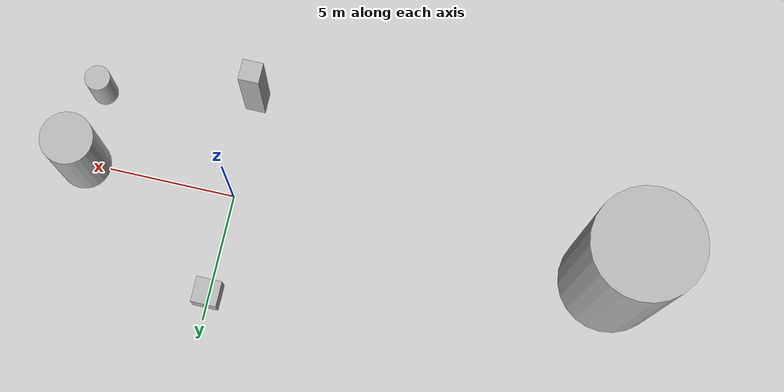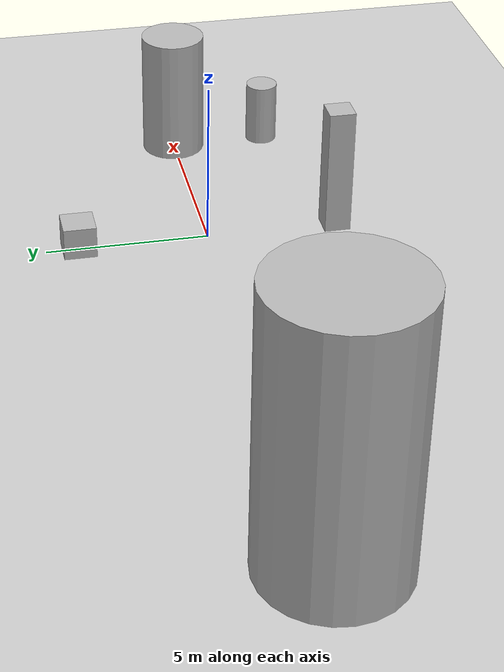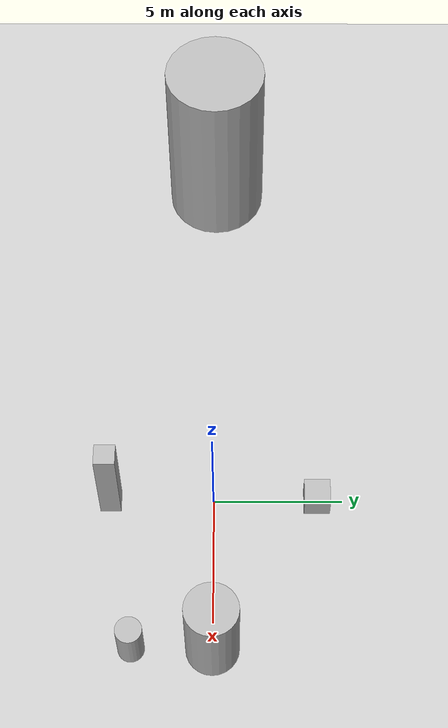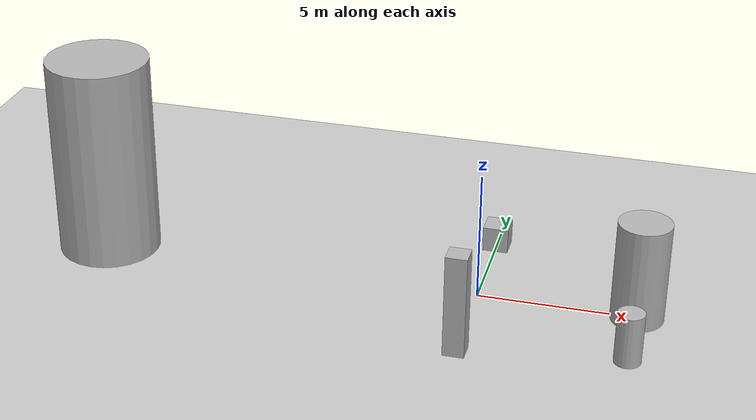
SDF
<?xml version="1.0"?>
<sdf version="1.5">
  <world name="default">
    <!-- A global light source -->
    <include>
      <uri>model://sun</uri>
    </include>
    <!-- A ground plane -->
    <include>
      <uri>model://ground_plane</uri>
    </include>
    <include>
      <uri>model://asphalt_plane</uri>
    </include>

    <!-- Cylinder 1 -->
    <model name="cylinder_1">
      <pose>6 0 2 0 0 0</pose>
      <link name="link">
        <collision name="collision">
          <geometry>
            <cylinder>
              <radius>1.0</radius>
              <length>4.0</length>
            </cylinder>
          </geometry>
        </collision>
        <visual name="visual">
          <geometry>
            <cylinder>
              <radius>1.0</radius>
              <length>4.0</length>
            </cylinder>
          </geometry>
        </visual>
      </link>
    </model>

    <!-- Cylinder 11 -->
    <model name="cylinder_11">
      <pose>6 -3 1 0 0 0</pose>
      <link name="link">
        <collision name="collision">
          <geometry>
            <cylinder>
              <radius>0.5</radius>
              <length>2.0</length>
            </cylinder>
          </geometry>
        </collision>
        <visual name="visual">
          <geometry>
            <cylinder>
              <radius>0.5</radius>
              <length>2.0</length>
            </cylinder>
          </geometry>
        </visual>
      </link>
    </model>

    <!-- Cylinder 2 -->
    <model name="cylinder_2">
      <pose>-15 0 4 0 0 0</pose>
      <link name="link">
        <collision name="collision">
          <geometry>
            <cylinder>
              <radius>2.0</radius>
              <length>8.0</length>
            </cylinder>
          </geometry>
        </collision>
        <visual name="visual">
          <geometry>
            <cylinder>
              <radius>2.0</radius>
              <length>8.0</length>
            </cylinder>
          </geometry>
        </visual>
      </link>
    </model>

    <!-- Box 1 -->
    <model name="box_1">
      <pose>0 4 0.5 0 0 0</pose>
      <link name="link">
        <collision name="collision">
          <geometry>
            <box>
              <size>1 1 1</size>
            </box>
          </geometry>
        </collision>
        <visual name="visual">
          <geometry>
            <box>
              <size>1 1 1</size>
            </box>
          </geometry>
        </visual>
      </link>
    </model>

    <!-- Box 2 -->
    <model name="box_2">
      <pose>0 -4 2 0 0 0</pose>
      <link name="link">
        <collision name="collision">
          <geometry>
            <box>
              <size>0.8 0.8 4</size>
            </box>
          </geometry>
        </collision>
        <visual name="visual">
          <geometry>
            <box>
              <size>0.8 0.8 4</size>
            </box>
          </geometry>
        </visual>
      </link>
    </model>

    <physics name='default_physics' default='0' type='ode'>
      <gravity>0 0 -9.8066</gravity>
      <ode>
        <solver>
          <type>quick</type>
          <iters>10</iters>
          <sor>1.3</sor>
          <use_dynamic_moi_rescaling>0</use_dynamic_moi_rescaling>
        </solver>
        <constraints>
          <cfm>0</cfm>
          <erp>0.2</erp>
          <contact_max_correcting_vel>100</contact_max_correcting_vel>
          <contact_surface_layer>0.001</contact_surface_layer>
        </constraints>
      </ode>
      <max_step_size>0.004</max_step_size>
      <real_time_factor>1</real_time_factor>
      <real_time_update_rate>250</real_time_update_rate>
      <magnetic_field>6.0e-6 2.3e-5 -4.2e-5</magnetic_field>
    </physics>
  </world>
</sdf>
